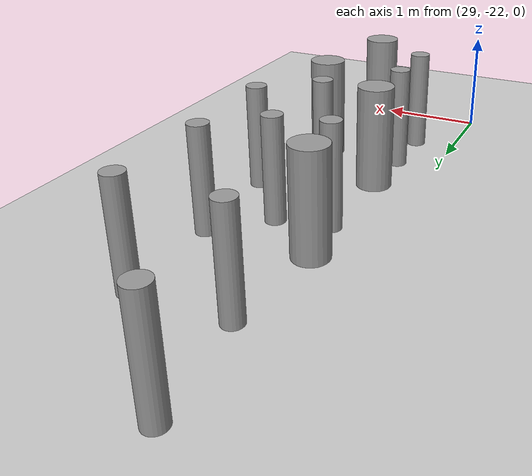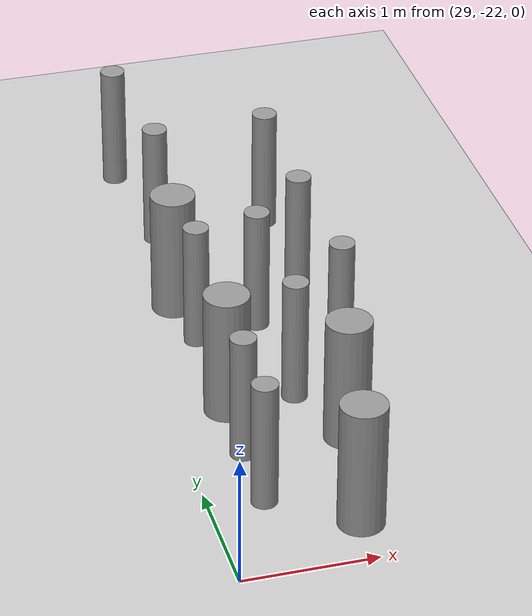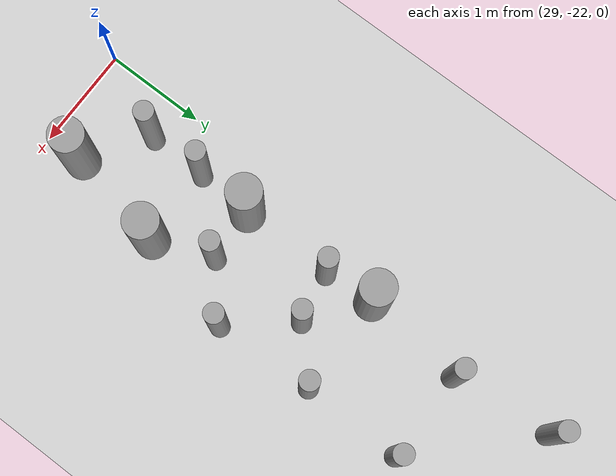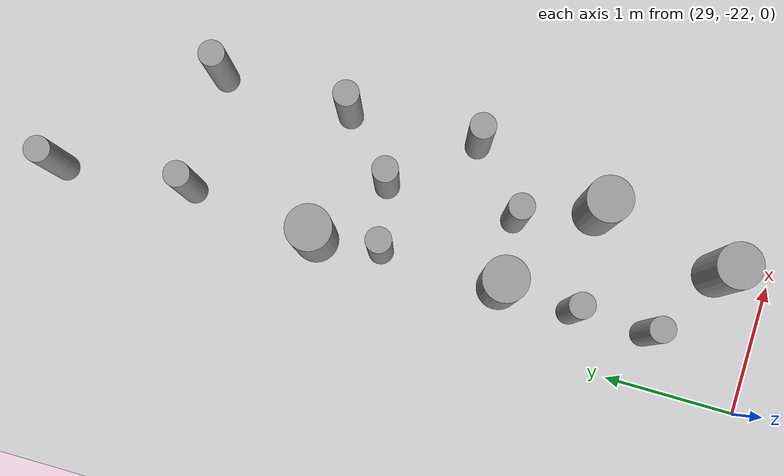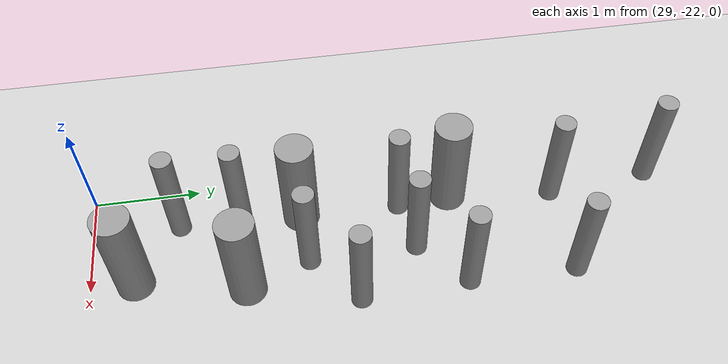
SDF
<sdf version="1.6">
 <world name="default">
  <model name="ground_plane">
   <static>1</static>
   <link name="link">
    <collision name="collision">
     <geometry><plane><normal>0 0 1</normal><size>100 100</size></plane></geometry>
     <surface><friction><ode><mu>100</mu><mu2>50</mu2></ode></friction></surface>
    </collision>
    <visual name="visual">
     <cast_shadows>0</cast_shadows>
     <geometry><plane><normal>0 0 1</normal><size>100 100</size></plane></geometry>
     <material>
      <script><uri>file://media/materials/scripts/gazebo.material</uri><name>Gazebo/Grey</name></script>
     </material>
    </visual>
   </link>
  </model>
  <model name="cyl_wall_clone_clone_1_clone_1_clone_clone_clone">
   <link name="link_0">
    <pose>-2.73893 -0.366465 0 0 -0 0</pose>
    <inertial>
     <mass>0.0374993</mass>
     <inertia>
      <ixx>0.00321281</ixx>
      <ixy>0</ixy>
      <ixz>0</ixz>
      <iyy>0.00321281</iyy>
      <iyz>0</iyz>
      <izz>0.000175774</izz>
     </inertia>
    </inertial>
    <visual name="visual">
     <geometry><cylinder><radius>0.0968661</radius><length>1</length></cylinder></geometry>
     <material>
      <lighting>1</lighting>
      <script><uri>file://media/materials/scripts/gazebo.material</uri><name>Gazebo/Grey</name></script>
      <ambient>0.3 0.3 0.3 1</ambient>
      <diffuse>0.7 0.7 0.7 1</diffuse>
      <specular>0.01 0.01 0.01 1</specular>
      <emissive>0 0 0 1</emissive>
     </material>
    </visual>
    <collision name="collision">
     <geometry><cylinder><radius>0.096866</radius><length>1</length></cylinder></geometry>
     <surface>
      <friction>
       <ode><mu>1</mu><mu2>1</mu2><fdir1>0 0 0</fdir1><slip1>0</slip1><slip2>0</slip2></ode>
       <torsional>
        <coefficient>1</coefficient>
        <patch_radius>0</patch_radius>
        <surface_radius>0</surface_radius>
        <use_patch_radius>1</use_patch_radius>
        <ode><slip>0</slip></ode>
       </torsional>
      </friction>
      <bounce><restitution_coefficient>0</restitution_coefficient><threshold>1e+06</threshold></bounce>
      <contact>
       <collide_without_contact>0</collide_without_contact>
       <collide_without_contact_bitmask>1</collide_without_contact_bitmask>
       <collide_bitmask>1</collide_bitmask>
       <ode>
        <soft_cfm>0</soft_cfm>
        <soft_erp>0.2</soft_erp>
        <kp>1e+13</kp>
        <kd>1</kd>
        <max_vel>0.01</max_vel>
        <min_depth>0</min_depth>
       </ode>
       <bullet>
        <split_impulse>1</split_impulse>
        <split_impulse_penetration_threshold>-0.01</split_impulse_penetration_threshold>
        <soft_cfm>0</soft_cfm>
        <soft_erp>0.2</soft_erp>
        <kp>1e+13</kp>
        <kd>1</kd>
       </bullet>
      </contact>
     </surface>
    </collision>
   </link>
   <link name="link_0_clone">
    <pose>-1.73893 0.61877 0 0 -0 0</pose>
    <inertial>
     <mass>0.0374993</mass>
     <inertia>
      <ixx>0.00321281</ixx>
      <ixy>0</ixy>
      <ixz>0</ixz>
      <iyy>0.00321281</iyy>
      <iyz>0</iyz>
      <izz>0.000175774</izz>
     </inertia>
    </inertial>
    <visual name="visual">
     <geometry><cylinder><radius>0.0968661</radius><length>1</length></cylinder></geometry>
     <material>
      <lighting>1</lighting>
      <script><uri>file://media/materials/scripts/gazebo.material</uri><name>Gazebo/Grey</name></script>
      <ambient>0.3 0.3 0.3 1</ambient>
      <diffuse>0.7 0.7 0.7 1</diffuse>
      <specular>0.01 0.01 0.01 1</specular>
      <emissive>0 0 0 1</emissive>
      <shader type="pixel"/>
     </material>
    </visual>
    <collision name="collision">
     <geometry><cylinder><radius>0.096866</radius><length>1</length></cylinder></geometry>
     <surface>
      <friction>
       <ode><mu>1</mu><mu2>1</mu2><fdir1>0 0 0</fdir1><slip1>0</slip1><slip2>0</slip2></ode>
       <torsional>
        <coefficient>1</coefficient>
        <patch_radius>0</patch_radius>
        <surface_radius>0</surface_radius>
        <use_patch_radius>1</use_patch_radius>
        <ode><slip>0</slip></ode>
       </torsional>
      </friction>
      <bounce><restitution_coefficient>0</restitution_coefficient><threshold>1e+06</threshold></bounce>
      <contact>
       <collide_without_contact>0</collide_without_contact>
       <collide_without_contact_bitmask>1</collide_without_contact_bitmask>
       <collide_bitmask>1</collide_bitmask>
       <ode>
        <soft_cfm>0</soft_cfm>
        <soft_erp>0.2</soft_erp>
        <kp>1e+13</kp>
        <kd>1</kd>
        <max_vel>0.01</max_vel>
        <min_depth>0</min_depth>
       </ode>
       <bullet>
        <split_impulse>1</split_impulse>
        <split_impulse_penetration_threshold>-0.01</split_impulse_penetration_threshold>
        <soft_cfm>0</soft_cfm>
        <soft_erp>0.2</soft_erp>
        <kp>1e+13</kp>
        <kd>1</kd>
       </bullet>
      </contact>
     </surface>
    </collision>
   </link>
   <link name="link_0_clone_clone">
    <pose>-0.327073 0.143919 0 0 -0 0</pose>
    <inertial>
     <mass>0.0374993</mass>
     <inertia>
      <ixx>0.00321281</ixx>
      <ixy>0</ixy>
      <ixz>0</ixz>
      <iyy>0.00321281</iyy>
      <iyz>0</iyz>
      <izz>0.000175774</izz>
     </inertia>
    </inertial>
    <visual name="visual">
     <geometry><cylinder><radius>0.0968661</radius><length>1</length></cylinder></geometry>
     <material>
      <lighting>1</lighting>
      <script><uri>file://media/materials/scripts/gazebo.material</uri><name>Gazebo/Grey</name></script>
      <ambient>0.3 0.3 0.3 1</ambient>
      <diffuse>0.7 0.7 0.7 1</diffuse>
      <specular>0.01 0.01 0.01 1</specular>
      <emissive>0 0 0 1</emissive>
      <shader type="pixel"/>
     </material>
    </visual>
    <collision name="collision">
     <geometry><cylinder><radius>0.096866</radius><length>1</length></cylinder></geometry>
     <surface>
      <friction>
       <ode><mu>1</mu><mu2>1</mu2><fdir1>0 0 0</fdir1><slip1>0</slip1><slip2>0</slip2></ode>
       <torsional>
        <coefficient>1</coefficient>
        <patch_radius>0</patch_radius>
        <surface_radius>0</surface_radius>
        <use_patch_radius>1</use_patch_radius>
        <ode><slip>0</slip></ode>
       </torsional>
      </friction>
      <bounce><restitution_coefficient>0</restitution_coefficient><threshold>1e+06</threshold></bounce>
      <contact>
       <collide_without_contact>0</collide_without_contact>
       <collide_without_contact_bitmask>1</collide_without_contact_bitmask>
       <collide_bitmask>1</collide_bitmask>
       <ode>
        <soft_cfm>0</soft_cfm>
        <soft_erp>0.2</soft_erp>
        <kp>1e+13</kp>
        <kd>1</kd>
        <max_vel>0.01</max_vel>
        <min_depth>0</min_depth>
       </ode>
       <bullet>
        <split_impulse>1</split_impulse>
        <split_impulse_penetration_threshold>-0.01</split_impulse_penetration_threshold>
        <soft_cfm>0</soft_cfm>
        <soft_erp>0.2</soft_erp>
        <kp>1e+13</kp>
        <kd>1</kd>
       </bullet>
      </contact>
     </surface>
    </collision>
   </link>
   <link name="link_0_clone_clone_0">
    <pose>1.26107 -0.419359 0 0 -0 0</pose>
    <inertial>
     <mass>0.0374993</mass>
     <inertia>
      <ixx>0.00321281</ixx>
      <ixy>0</ixy>
      <ixz>0</ixz>
      <iyy>0.00321281</iyy>
      <iyz>0</iyz>
      <izz>0.000175774</izz>
     </inertia>
    </inertial>
    <visual name="visual">
     <geometry><cylinder><radius>0.0968661</radius><length>1</length></cylinder></geometry>
     <material>
      <lighting>1</lighting>
      <script><uri>file://media/materials/scripts/gazebo.material</uri><name>Gazebo/Grey</name></script>
      <ambient>0.3 0.3 0.3 1</ambient>
      <diffuse>0.7 0.7 0.7 1</diffuse>
      <specular>0.01 0.01 0.01 1</specular>
      <emissive>0 0 0 1</emissive>
      <shader type="pixel"/>
     </material>
    </visual>
    <collision name="collision">
     <geometry><cylinder><radius>0.096866</radius><length>1</length></cylinder></geometry>
     <surface>
      <friction>
       <ode><mu>1</mu><mu2>1</mu2><fdir1>0 0 0</fdir1><slip1>0</slip1><slip2>0</slip2></ode>
       <torsional>
        <coefficient>1</coefficient>
        <patch_radius>0</patch_radius>
        <surface_radius>0</surface_radius>
        <use_patch_radius>1</use_patch_radius>
        <ode><slip>0</slip></ode>
       </torsional>
      </friction>
      <bounce><restitution_coefficient>0</restitution_coefficient><threshold>1e+06</threshold></bounce>
      <contact>
       <collide_without_contact>0</collide_without_contact>
       <collide_without_contact_bitmask>1</collide_without_contact_bitmask>
       <collide_bitmask>1</collide_bitmask>
       <ode>
        <soft_cfm>0</soft_cfm>
        <soft_erp>0.2</soft_erp>
        <kp>1e+13</kp>
        <kd>1</kd>
        <max_vel>0.01</max_vel>
        <min_depth>0</min_depth>
       </ode>
       <bullet>
        <split_impulse>1</split_impulse>
        <split_impulse_penetration_threshold>-0.01</split_impulse_penetration_threshold>
        <soft_cfm>0</soft_cfm>
        <soft_erp>0.2</soft_erp>
        <kp>1e+13</kp>
        <kd>1</kd>
       </bullet>
      </contact>
     </surface>
    </collision>
   </link>
   <link name="link_0_clone_clone_1">
    <pose>-1.73893 -0.277168 0 0 -0 0</pose>
    <inertial>
     <mass>0.0374993</mass>
     <inertia>
      <ixx>0.00321281</ixx>
      <ixy>0</ixy>
      <ixz>0</ixz>
      <iyy>0.00321281</iyy>
      <iyz>0</iyz>
      <izz>0.000175774</izz>
     </inertia>
    </inertial>
    <visual name="visual">
     <geometry><cylinder><radius>0.0968661</radius><length>1</length></cylinder></geometry>
     <material>
      <lighting>1</lighting>
      <script><uri>file://media/materials/scripts/gazebo.material</uri><name>Gazebo/Grey</name></script>
      <ambient>0.3 0.3 0.3 1</ambient>
      <diffuse>0.7 0.7 0.7 1</diffuse>
      <specular>0.01 0.01 0.01 1</specular>
      <emissive>0 0 0 1</emissive>
      <shader type="pixel"/>
     </material>
    </visual>
    <collision name="collision">
     <geometry><cylinder><radius>0.096866</radius><length>1</length></cylinder></geometry>
     <surface>
      <friction>
       <ode><mu>1</mu><mu2>1</mu2><fdir1>0 0 0</fdir1><slip1>0</slip1><slip2>0</slip2></ode>
       <torsional>
        <coefficient>1</coefficient>
        <patch_radius>0</patch_radius>
        <surface_radius>0</surface_radius>
        <use_patch_radius>1</use_patch_radius>
        <ode><slip>0</slip></ode>
       </torsional>
      </friction>
      <bounce><restitution_coefficient>0</restitution_coefficient><threshold>1e+06</threshold></bounce>
      <contact>
       <collide_without_contact>0</collide_without_contact>
       <collide_without_contact_bitmask>1</collide_without_contact_bitmask>
       <collide_bitmask>1</collide_bitmask>
       <ode>
        <soft_cfm>0</soft_cfm>
        <soft_erp>0.2</soft_erp>
        <kp>1e+13</kp>
        <kd>1</kd>
        <max_vel>0.01</max_vel>
        <min_depth>0</min_depth>
       </ode>
       <bullet>
        <split_impulse>1</split_impulse>
        <split_impulse_penetration_threshold>-0.01</split_impulse_penetration_threshold>
        <soft_cfm>0</soft_cfm>
        <soft_erp>0.2</soft_erp>
        <kp>1e+13</kp>
        <kd>1</kd>
       </bullet>
      </contact>
     </surface>
    </collision>
   </link>
   <link name="link_0_clone_clone_2">
    <pose>-0.738934 0.593961 0 0 -0 0</pose>
    <inertial>
     <mass>0.0374993</mass>
     <inertia>
      <ixx>0.00321281</ixx>
      <ixy>0</ixy>
      <ixz>0</ixz>
      <iyy>0.00321281</iyy>
      <iyz>0</iyz>
      <izz>0.000175774</izz>
     </inertia>
    </inertial>
    <visual name="visual">
     <geometry><cylinder><radius>0.0968661</radius><length>1</length></cylinder></geometry>
     <material>
      <lighting>1</lighting>
      <script><uri>file://media/materials/scripts/gazebo.material</uri><name>Gazebo/Grey</name></script>
      <ambient>0.3 0.3 0.3 1</ambient>
      <diffuse>0.7 0.7 0.7 1</diffuse>
      <specular>0.01 0.01 0.01 1</specular>
      <emissive>0 0 0 1</emissive>
      <shader type="pixel"/>
     </material>
    </visual>
    <collision name="collision">
     <geometry><cylinder><radius>0.096866</radius><length>1</length></cylinder></geometry>
     <surface>
      <friction>
       <ode><mu>1</mu><mu2>1</mu2><fdir1>0 0 0</fdir1><slip1>0</slip1><slip2>0</slip2></ode>
       <torsional>
        <coefficient>1</coefficient>
        <patch_radius>0</patch_radius>
        <surface_radius>0</surface_radius>
        <use_patch_radius>1</use_patch_radius>
        <ode><slip>0</slip></ode>
       </torsional>
      </friction>
      <bounce><restitution_coefficient>0</restitution_coefficient><threshold>1e+06</threshold></bounce>
      <contact>
       <collide_without_contact>0</collide_without_contact>
       <collide_without_contact_bitmask>1</collide_without_contact_bitmask>
       <collide_bitmask>1</collide_bitmask>
       <ode>
        <soft_cfm>0</soft_cfm>
        <soft_erp>0.2</soft_erp>
        <kp>1e+13</kp>
        <kd>1</kd>
        <max_vel>0.01</max_vel>
        <min_depth>0</min_depth>
       </ode>
       <bullet>
        <split_impulse>1</split_impulse>
        <split_impulse_penetration_threshold>-0.01</split_impulse_penetration_threshold>
        <soft_cfm>0</soft_cfm>
        <soft_erp>0.2</soft_erp>
        <kp>1e+13</kp>
        <kd>1</kd>
       </bullet>
      </contact>
     </surface>
    </collision>
   </link>
   <link name="link_0_clone_clone_3">
    <pose>0.261066 0.624849 0 0 -0 0</pose>
    <inertial>
     <mass>0.0374993</mass>
     <inertia>
      <ixx>0.00321281</ixx>
      <ixy>0</ixy>
      <ixz>0</ixz>
      <iyy>0.00321281</iyy>
      <iyz>0</iyz>
      <izz>0.000175774</izz>
     </inertia>
    </inertial>
    <visual name="visual">
     <geometry><cylinder><radius>0.0968661</radius><length>1</length></cylinder></geometry>
     <material>
      <lighting>1</lighting>
      <script><uri>file://media/materials/scripts/gazebo.material</uri><name>Gazebo/Grey</name></script>
      <ambient>0.3 0.3 0.3 1</ambient>
      <diffuse>0.7 0.7 0.7 1</diffuse>
      <specular>0.01 0.01 0.01 1</specular>
      <emissive>0 0 0 1</emissive>
      <shader type="pixel"/>
     </material>
    </visual>
    <collision name="collision">
     <geometry><cylinder><radius>0.096866</radius><length>1</length></cylinder></geometry>
     <surface>
      <friction>
       <ode><mu>1</mu><mu2>1</mu2><fdir1>0 0 0</fdir1><slip1>0</slip1><slip2>0</slip2></ode>
       <torsional>
        <coefficient>1</coefficient>
        <patch_radius>0</patch_radius>
        <surface_radius>0</surface_radius>
        <use_patch_radius>1</use_patch_radius>
        <ode><slip>0</slip></ode>
       </torsional>
      </friction>
      <bounce><restitution_coefficient>0</restitution_coefficient><threshold>1e+06</threshold></bounce>
      <contact>
       <collide_without_contact>0</collide_without_contact>
       <collide_without_contact_bitmask>1</collide_without_contact_bitmask>
       <collide_bitmask>1</collide_bitmask>
       <ode>
        <soft_cfm>0</soft_cfm>
        <soft_erp>0.2</soft_erp>
        <kp>1e+13</kp>
        <kd>1</kd>
        <max_vel>0.01</max_vel>
        <min_depth>0</min_depth>
       </ode>
       <bullet>
        <split_impulse>1</split_impulse>
        <split_impulse_penetration_threshold>-0.01</split_impulse_penetration_threshold>
        <soft_cfm>0</soft_cfm>
        <soft_erp>0.2</soft_erp>
        <kp>1e+13</kp>
        <kd>1</kd>
       </bullet>
      </contact>
     </surface>
    </collision>
   </link>
   <link name="link_0_clone_clone_4">
    <pose>-0.239049 -0.353105 0 0 -0 0</pose>
    <inertial>
     <mass>0.0374993</mass>
     <inertia>
      <ixx>0.00321281</ixx>
      <ixy>0</ixy>
      <ixz>0</ixz>
      <iyy>0.00321281</iyy>
      <iyz>0</iyz>
      <izz>0.000175774</izz>
     </inertia>
    </inertial>
    <visual name="visual">
     <geometry><cylinder><radius>0.0968661</radius><length>1</length></cylinder></geometry>
     <material>
      <lighting>1</lighting>
      <script><uri>file://media/materials/scripts/gazebo.material</uri><name>Gazebo/Grey</name></script>
      <ambient>0.3 0.3 0.3 1</ambient>
      <diffuse>0.7 0.7 0.7 1</diffuse>
      <specular>0.01 0.01 0.01 1</specular>
      <emissive>0 0 0 1</emissive>
      <shader type="pixel"/>
     </material>
    </visual>
    <collision name="collision">
     <geometry><cylinder><radius>0.096866</radius><length>1</length></cylinder></geometry>
     <surface>
      <friction>
       <ode><mu>1</mu><mu2>1</mu2><fdir1>0 0 0</fdir1><slip1>0</slip1><slip2>0</slip2></ode>
       <torsional>
        <coefficient>1</coefficient>
        <patch_radius>0</patch_radius>
        <surface_radius>0</surface_radius>
        <use_patch_radius>1</use_patch_radius>
        <ode><slip>0</slip></ode>
       </torsional>
      </friction>
      <bounce><restitution_coefficient>0</restitution_coefficient><threshold>1e+06</threshold></bounce>
      <contact>
       <collide_without_contact>0</collide_without_contact>
       <collide_without_contact_bitmask>1</collide_without_contact_bitmask>
       <collide_bitmask>1</collide_bitmask>
       <ode>
        <soft_cfm>0</soft_cfm>
        <soft_erp>0.2</soft_erp>
        <kp>1e+13</kp>
        <kd>1</kd>
        <max_vel>0.01</max_vel>
        <min_depth>0</min_depth>
       </ode>
       <bullet>
        <split_impulse>1</split_impulse>
        <split_impulse_penetration_threshold>-0.01</split_impulse_penetration_threshold>
        <soft_cfm>0</soft_cfm>
        <soft_erp>0.2</soft_erp>
        <kp>1e+13</kp>
        <kd>1</kd>
       </bullet>
      </contact>
     </surface>
    </collision>
   </link>
   <link name="link_0_clone_clone_5">
    <pose>0.672792 0.143919 0 0 -0 0</pose>
    <inertial>
     <mass>0.0374993</mass>
     <inertia>
      <ixx>0.00321281</ixx>
      <ixy>0</ixy>
      <ixz>0</ixz>
      <iyy>0.00321281</iyy>
      <iyz>0</iyz>
      <izz>0.000175774</izz>
     </inertia>
    </inertial>
    <visual name="visual">
     <geometry><cylinder><radius>0.0968661</radius><length>1</length></cylinder></geometry>
     <material>
      <lighting>1</lighting>
      <script><uri>file://media/materials/scripts/gazebo.material</uri><name>Gazebo/Grey</name></script>
      <ambient>0.3 0.3 0.3 1</ambient>
      <diffuse>0.7 0.7 0.7 1</diffuse>
      <specular>0.01 0.01 0.01 1</specular>
      <emissive>0 0 0 1</emissive>
      <shader type="pixel"/>
     </material>
    </visual>
    <collision name="collision">
     <geometry><cylinder><radius>0.096866</radius><length>1</length></cylinder></geometry>
     <surface>
      <friction>
       <ode><mu>1</mu><mu2>1</mu2><fdir1>0 0 0</fdir1><slip1>0</slip1><slip2>0</slip2></ode>
       <torsional>
        <coefficient>1</coefficient>
        <patch_radius>0</patch_radius>
        <surface_radius>0</surface_radius>
        <use_patch_radius>1</use_patch_radius>
        <ode><slip>0</slip></ode>
       </torsional>
      </friction>
      <bounce><restitution_coefficient>0</restitution_coefficient><threshold>1e+06</threshold></bounce>
      <contact>
       <collide_without_contact>0</collide_without_contact>
       <collide_without_contact_bitmask>1</collide_without_contact_bitmask>
       <collide_bitmask>1</collide_bitmask>
       <ode>
        <soft_cfm>0</soft_cfm>
        <soft_erp>0.2</soft_erp>
        <kp>1e+13</kp>
        <kd>1</kd>
        <max_vel>0.01</max_vel>
        <min_depth>0</min_depth>
       </ode>
       <bullet>
        <split_impulse>1</split_impulse>
        <split_impulse_penetration_threshold>-0.01</split_impulse_penetration_threshold>
        <soft_cfm>0</soft_cfm>
        <soft_erp>0.2</soft_erp>
        <kp>1e+13</kp>
        <kd>1</kd>
       </bullet>
      </contact>
     </surface>
    </collision>
   </link>
   <link name="link_0_clone_clone_6">
    <pose>1.84596 -0.433423 0 0 -0 0</pose>
    <inertial>
     <mass>0.0374993</mass>
     <inertia>
      <ixx>0.00321281</ixx>
      <ixy>0</ixy>
      <ixz>0</ixz>
      <iyy>0.00321281</iyy>
      <iyz>0</iyz>
      <izz>0.000175774</izz>
     </inertia>
    </inertial>
    <visual name="visual">
     <geometry><cylinder><radius>0.0968661</radius><length>1</length></cylinder></geometry>
     <material>
      <lighting>1</lighting>
      <script><uri>file://media/materials/scripts/gazebo.material</uri><name>Gazebo/Grey</name></script>
      <ambient>0.3 0.3 0.3 1</ambient>
      <diffuse>0.7 0.7 0.7 1</diffuse>
      <specular>0.01 0.01 0.01 1</specular>
      <emissive>0 0 0 1</emissive>
      <shader type="pixel"/>
     </material>
    </visual>
    <collision name="collision">
     <geometry><cylinder><radius>0.096866</radius><length>1</length></cylinder></geometry>
     <surface>
      <friction>
       <ode><mu>1</mu><mu2>1</mu2><fdir1>0 0 0</fdir1><slip1>0</slip1><slip2>0</slip2></ode>
       <torsional>
        <coefficient>1</coefficient>
        <patch_radius>0</patch_radius>
        <surface_radius>0</surface_radius>
        <use_patch_radius>1</use_patch_radius>
        <ode><slip>0</slip></ode>
       </torsional>
      </friction>
      <bounce><restitution_coefficient>0</restitution_coefficient><threshold>1e+06</threshold></bounce>
      <contact>
       <collide_without_contact>0</collide_without_contact>
       <collide_without_contact_bitmask>1</collide_without_contact_bitmask>
       <collide_bitmask>1</collide_bitmask>
       <ode>
        <soft_cfm>0</soft_cfm>
        <soft_erp>0.2</soft_erp>
        <kp>1e+13</kp>
        <kd>1</kd>
        <max_vel>0.01</max_vel>
        <min_depth>0</min_depth>
       </ode>
       <bullet>
        <split_impulse>1</split_impulse>
        <split_impulse_penetration_threshold>-0.01</split_impulse_penetration_threshold>
        <soft_cfm>0</soft_cfm>
        <soft_erp>0.2</soft_erp>
        <kp>1e+13</kp>
        <kd>1</kd>
       </bullet>
      </contact>
     </surface>
    </collision>
   </link>
   <link name="link_1">
    <pose>-0.738934 -0.397931 0 0 -0 0</pose>
    <inertial>
     <mass>0.117398</mass>
     <inertia>
      <ixx>0.0106445</ixx>
      <ixy>0</ixy>
      <ixz>0</ixz>
      <iyy>0.0106445</iyy>
      <iyz>0</iyz>
      <izz>0.00172278</izz>
     </inertia>
    </inertial>
    <visual name="visual">
     <geometry><cylinder><radius>0.171317</radius><length>1</length></cylinder></geometry>
     <material>
      <lighting>1</lighting>
      <script><uri>file://media/materials/scripts/gazebo.material</uri><name>Gazebo/Grey</name></script>
      <ambient>0.3 0.3 0.3 1</ambient>
      <diffuse>0.7 0.7 0.7 1</diffuse>
      <specular>0.01 0.01 0.01 1</specular>
      <emissive>0 0 0 1</emissive>
     </material>
    </visual>
    <collision name="collision">
     <geometry><cylinder><radius>0.171317</radius><length>1</length></cylinder></geometry>
     <surface>
      <friction>
       <ode><mu>1</mu><mu2>1</mu2><fdir1>0 0 0</fdir1><slip1>0</slip1><slip2>0</slip2></ode>
       <torsional>
        <coefficient>1</coefficient>
        <patch_radius>0</patch_radius>
        <surface_radius>0</surface_radius>
        <use_patch_radius>1</use_patch_radius>
        <ode><slip>0</slip></ode>
       </torsional>
      </friction>
      <bounce><restitution_coefficient>0</restitution_coefficient><threshold>1e+06</threshold></bounce>
      <contact>
       <collide_without_contact>0</collide_without_contact>
       <collide_without_contact_bitmask>1</collide_without_contact_bitmask>
       <collide_bitmask>1</collide_bitmask>
       <ode>
        <soft_cfm>0</soft_cfm>
        <soft_erp>0.2</soft_erp>
        <kp>1e+13</kp>
        <kd>1</kd>
        <max_vel>0.01</max_vel>
        <min_depth>0</min_depth>
       </ode>
       <bullet>
        <split_impulse>1</split_impulse>
        <split_impulse_penetration_threshold>-0.01</split_impulse_penetration_threshold>
        <soft_cfm>0</soft_cfm>
        <soft_erp>0.2</soft_erp>
        <kp>1e+13</kp>
        <kd>1</kd>
       </bullet>
      </contact>
     </surface>
    </collision>
   </link>
   <link name="link_1_clone">
    <pose>0.697784 -0.380861 0 0 -0 0</pose>
    <inertial>
     <mass>0.117398</mass>
     <inertia>
      <ixx>0.0106445</ixx>
      <ixy>0</ixy>
      <ixz>0</ixz>
      <iyy>0.0106445</iyy>
      <iyz>0</iyz>
      <izz>0.00172278</izz>
     </inertia>
    </inertial>
    <visual name="visual">
     <geometry><cylinder><radius>0.171317</radius><length>1</length></cylinder></geometry>
     <material>
      <lighting>1</lighting>
      <script><uri>file://media/materials/scripts/gazebo.material</uri><name>Gazebo/Grey</name></script>
      <ambient>0.3 0.3 0.3 1</ambient>
      <diffuse>0.7 0.7 0.7 1</diffuse>
      <specular>0.01 0.01 0.01 1</specular>
      <emissive>0 0 0 1</emissive>
      <shader type="pixel"/>
     </material>
    </visual>
    <collision name="collision">
     <geometry><cylinder><radius>0.171317</radius><length>1</length></cylinder></geometry>
     <surface>
      <friction>
       <ode><mu>1</mu><mu2>1</mu2><fdir1>0 0 0</fdir1><slip1>0</slip1><slip2>0</slip2></ode>
       <torsional>
        <coefficient>1</coefficient>
        <patch_radius>0</patch_radius>
        <surface_radius>0</surface_radius>
        <use_patch_radius>1</use_patch_radius>
        <ode><slip>0</slip></ode>
       </torsional>
      </friction>
      <bounce><restitution_coefficient>0</restitution_coefficient><threshold>1e+06</threshold></bounce>
      <contact>
       <collide_without_contact>0</collide_without_contact>
       <collide_without_contact_bitmask>1</collide_without_contact_bitmask>
       <collide_bitmask>1</collide_bitmask>
       <ode>
        <soft_cfm>0</soft_cfm>
        <soft_erp>0.2</soft_erp>
        <kp>1e+13</kp>
        <kd>1</kd>
        <max_vel>0.01</max_vel>
        <min_depth>0</min_depth>
       </ode>
       <bullet>
        <split_impulse>1</split_impulse>
        <split_impulse_penetration_threshold>-0.01</split_impulse_penetration_threshold>
        <soft_cfm>0</soft_cfm>
        <soft_erp>0.2</soft_erp>
        <kp>1e+13</kp>
        <kd>1</kd>
       </bullet>
      </contact>
     </surface>
    </collision>
   </link>
   <link name="link_1_clone_0">
    <pose>1.26107 0.358974 0 0 -0 0</pose>
    <inertial>
     <mass>0.117398</mass>
     <inertia>
      <ixx>0.0106445</ixx>
      <ixy>0</ixy>
      <ixz>0</ixz>
      <iyy>0.0106445</iyy>
      <iyz>0</iyz>
      <izz>0.00172278</izz>
     </inertia>
    </inertial>
    <visual name="visual">
     <geometry><cylinder><radius>0.171317</radius><length>1</length></cylinder></geometry>
     <material>
      <lighting>1</lighting>
      <script><uri>file://media/materials/scripts/gazebo.material</uri><name>Gazebo/Grey</name></script>
      <ambient>0.3 0.3 0.3 1</ambient>
      <diffuse>0.7 0.7 0.7 1</diffuse>
      <specular>0.01 0.01 0.01 1</specular>
      <emissive>0 0 0 1</emissive>
      <shader type="pixel"/>
     </material>
    </visual>
    <collision name="collision">
     <geometry><cylinder><radius>0.171317</radius><length>1</length></cylinder></geometry>
     <surface>
      <friction>
       <ode><mu>1</mu><mu2>1</mu2><fdir1>0 0 0</fdir1><slip1>0</slip1><slip2>0</slip2></ode>
       <torsional>
        <coefficient>1</coefficient>
        <patch_radius>0</patch_radius>
        <surface_radius>0</surface_radius>
        <use_patch_radius>1</use_patch_radius>
        <ode><slip>0</slip></ode>
       </torsional>
      </friction>
      <bounce><restitution_coefficient>0</restitution_coefficient><threshold>1e+06</threshold></bounce>
      <contact>
       <collide_without_contact>0</collide_without_contact>
       <collide_without_contact_bitmask>1</collide_without_contact_bitmask>
       <collide_bitmask>1</collide_bitmask>
       <ode>
        <soft_cfm>0</soft_cfm>
        <soft_erp>0.2</soft_erp>
        <kp>1e+13</kp>
        <kd>1</kd>
        <max_vel>0.01</max_vel>
        <min_depth>0</min_depth>
       </ode>
       <bullet>
        <split_impulse>1</split_impulse>
        <split_impulse_penetration_threshold>-0.01</split_impulse_penetration_threshold>
        <soft_cfm>0</soft_cfm>
        <soft_erp>0.2</soft_erp>
        <kp>1e+13</kp>
        <kd>1</kd>
       </bullet>
      </contact>
     </surface>
    </collision>
   </link>
   <link name="link_1_clone_1">
    <pose>2.26107 0.143919 0 0 -0 0</pose>
    <inertial>
     <mass>0.117398</mass>
     <inertia>
      <ixx>0.0106445</ixx>
      <ixy>0</ixy>
      <ixz>0</ixz>
      <iyy>0.0106445</iyy>
      <iyz>0</iyz>
      <izz>0.00172278</izz>
     </inertia>
    </inertial>
    <visual name="visual">
     <geometry><cylinder><radius>0.171317</radius><length>1</length></cylinder></geometry>
     <material>
      <lighting>1</lighting>
      <script><uri>file://media/materials/scripts/gazebo.material</uri><name>Gazebo/Grey</name></script>
      <ambient>0.3 0.3 0.3 1</ambient>
      <diffuse>0.7 0.7 0.7 1</diffuse>
      <specular>0.01 0.01 0.01 1</specular>
      <emissive>0 0 0 1</emissive>
      <shader type="pixel"/>
     </material>
    </visual>
    <collision name="collision">
     <geometry><cylinder><radius>0.171317</radius><length>1</length></cylinder></geometry>
     <surface>
      <friction>
       <ode><mu>1</mu><mu2>1</mu2><fdir1>0 0 0</fdir1><slip1>0</slip1><slip2>0</slip2></ode>
       <torsional>
        <coefficient>1</coefficient>
        <patch_radius>0</patch_radius>
        <surface_radius>0</surface_radius>
        <use_patch_radius>1</use_patch_radius>
        <ode><slip>0</slip></ode>
       </torsional>
      </friction>
      <bounce><restitution_coefficient>0</restitution_coefficient><threshold>1e+06</threshold></bounce>
      <contact>
       <collide_without_contact>0</collide_without_contact>
       <collide_without_contact_bitmask>1</collide_without_contact_bitmask>
       <collide_bitmask>1</collide_bitmask>
       <ode>
        <soft_cfm>0</soft_cfm>
        <soft_erp>0.2</soft_erp>
        <kp>1e+13</kp>
        <kd>1</kd>
        <max_vel>0.01</max_vel>
        <min_depth>0</min_depth>
       </ode>
       <bullet>
        <split_impulse>1</split_impulse>
        <split_impulse_penetration_threshold>-0.01</split_impulse_penetration_threshold>
        <soft_cfm>0</soft_cfm>
        <soft_erp>0.2</soft_erp>
        <kp>1e+13</kp>
        <kd>1</kd>
       </bullet>
      </contact>
     </surface>
    </collision>
   </link>
   <static>1</static>
   <pose>29.8104 -19.3302 0.5 0 0 -1.55814</pose>
  </model>
 </world>
</sdf>
